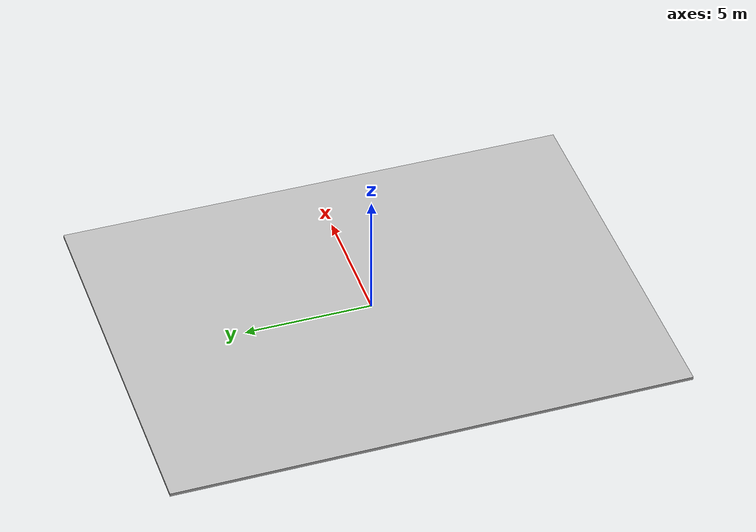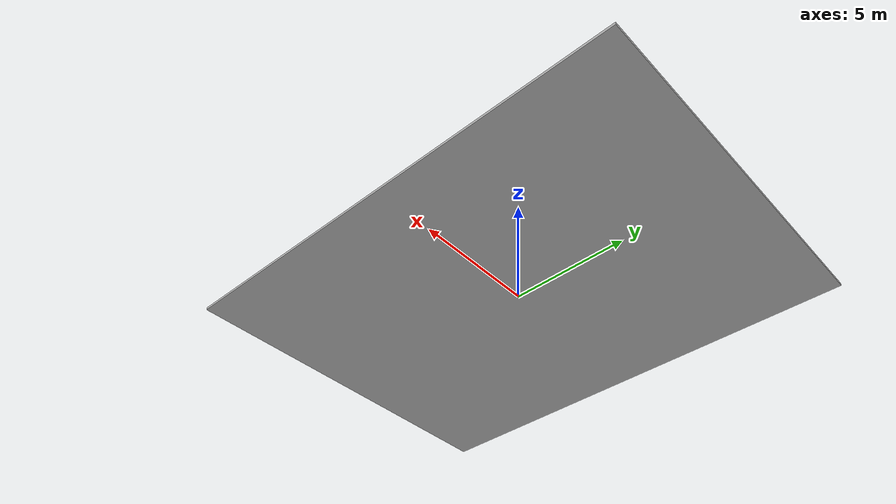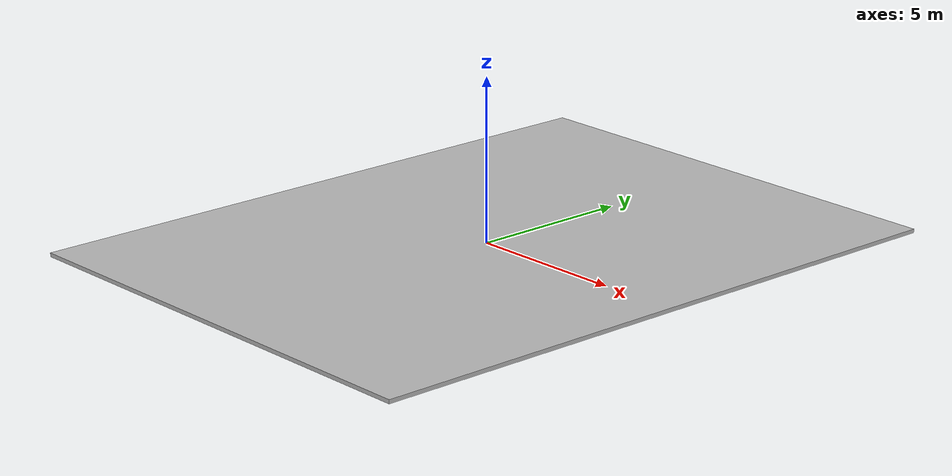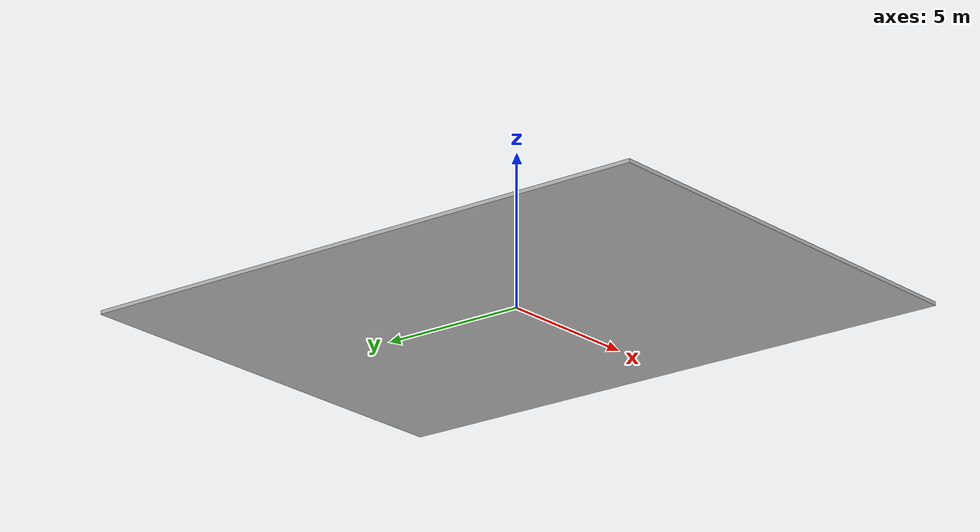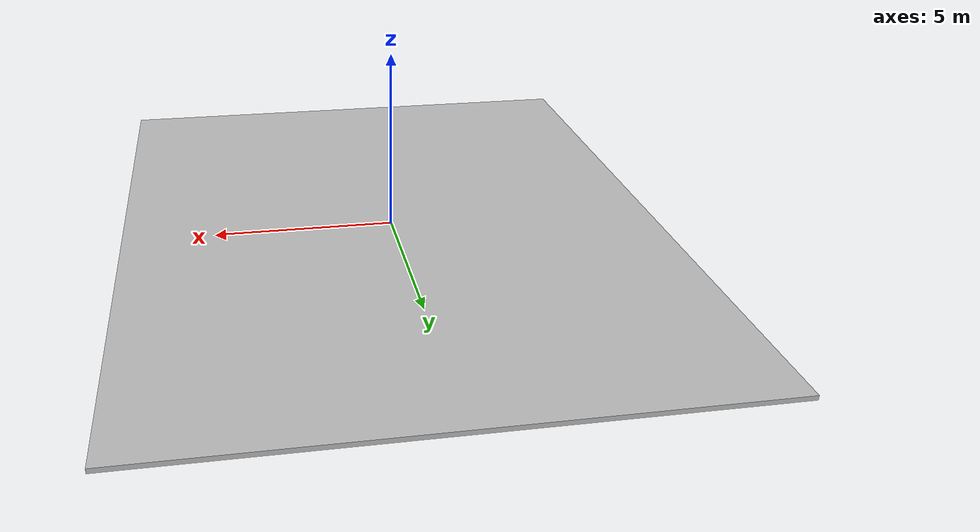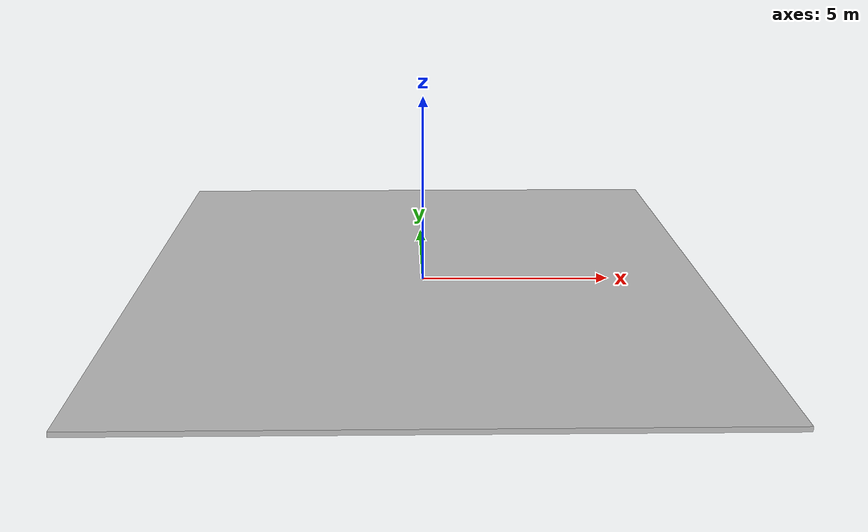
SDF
<?xml version="1.0" ?>
<sdf version="1.6">
    <model name="warehouse_floor">
      <pose>0 0 0  0 0 0</pose>
      <static>true</static>
      <link name="body">
	<inertial>
        <mass>1000</mass>
	<inertia>
          <ixx>1200083.33</ixx>
          <ixy>0</ixy>
          <ixz>0</ixz>
          <iyy>8333416.66</iyy>
          <iyz>0</iyz>
          <izz>2033333.33</izz>
        </inertia>
      </inertial>
	<collision name="collision">
        <geometry>
          <mesh>
            <uri>model://meshes/NEWGROUND_TEXTURED.dae</uri>
            <scale>1 1 1</scale>
          </mesh>
        </geometry>
        <surface>
          <friction>
            <ode>
              <mu>0.3</mu>
              <mu2>0.3</mu2>
              <fdir1>0 0 0</fdir1>
              <slip1>0</slip1>
              <slip2>0</slip2>
            </ode>
          </friction>
        </surface>
      </collision>

        <visual name="visual">
          <geometry>
            <mesh><uri>file://meshes/NEWGROUND_TEXTURED.dae</uri></mesh>
          </geometry>
	<meta> <layer> 1 </layer></meta>
        </visual>
      </link>
	<static>1</static>
    </model>
</sdf>
